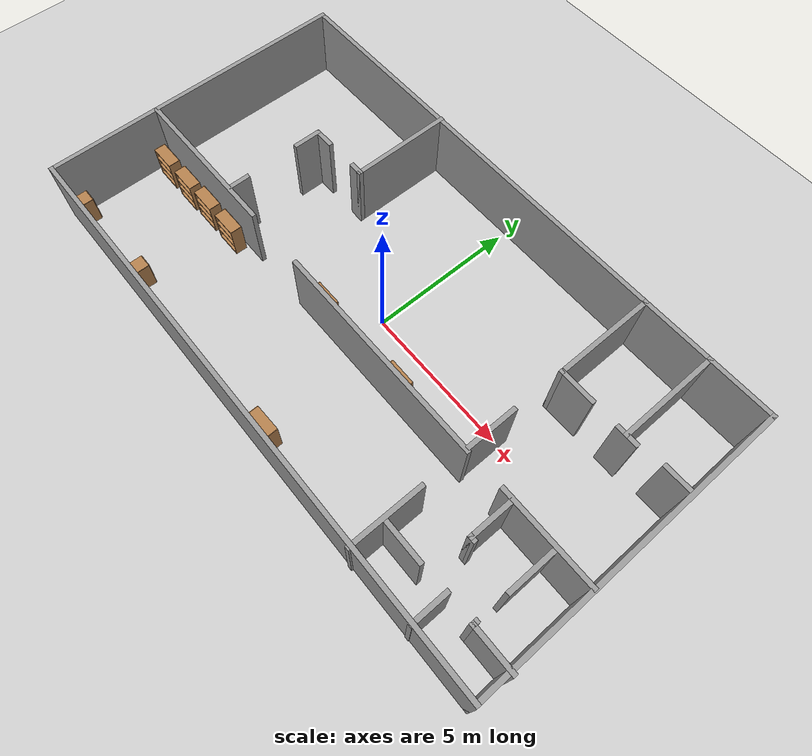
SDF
<sdf version="1.7">
 <world name="default">
  <light name="sun" type="directional">
   <pose>0 0 10 0 -0 0</pose>
   <diffuse>0.8 0.8 0.8 1</diffuse>
   <specular>0.2 0.2 0.2 1</specular>
   <attenuation>
    <range>1000</range>
    <constant>0.9</constant>
    <linear>0.01</linear>
    <quadratic>0.001</quadratic>
   </attenuation>
   <direction>-0.5 0.1 -0.9</direction>
   <spot><inner_angle>0</inner_angle><outer_angle>0</outer_angle><falloff>0</falloff></spot>
  </light>
  <model name="ground_plane">
   <static>1</static>
   <link name="link">
    <collision name="collision">
     <geometry><plane><normal>0 0 1</normal><size>100 100</size></plane></geometry>
     <surface>
      <contact><collide_bitmask>65535</collide_bitmask></contact>
      <friction><ode><mu>100</mu><mu2>50</mu2></ode></friction>
     </surface>
    </collision>
    <visual name="visual">
     <cast_shadows>0</cast_shadows>
     <geometry><plane><normal>0 0 1</normal><size>100 100</size></plane></geometry>
     <material>
      <script><uri>file://media/materials/scripts/gazebo.material</uri><name>Gazebo/Grey</name></script>
     </material>
    </visual>
   </link>
  </model>
  <gravity>0 0 -9.8</gravity>
  <magnetic_field>6e-06 2.3e-05 -4.2e-05</magnetic_field>
  <atmosphere type="adiabatic"/>
  <physics type="ode">
   <max_step_size>0.001</max_step_size>
   <real_time_factor>1</real_time_factor>
   <real_time_update_rate>1000</real_time_update_rate>
  </physics>
  <scene><ambient>0.4 0.4 0.4 1</ambient><background>0.7 0.7 0.7 1</background><shadows>1</shadows></scene>
  <audio><device>default</device></audio>
  <spherical_coordinates>
   <surface_model>EARTH_WGS84</surface_model>
   <latitude_deg>0</latitude_deg>
   <longitude_deg>0</longitude_deg>
   <elevation>0</elevation>
   <heading_deg>0</heading_deg>
  </spherical_coordinates>
  <model name="office_wall">
   <link name="Wall_0">
    <collision name="Wall_0_Collision">
     <geometry><box><size>10.75 0.15 2.5</size></box></geometry>
     <pose>0 0 1.25 0 -0 0</pose>
    </collision>
    <visual name="Wall_0_Visual">
     <pose>0 0 1.25 0 -0 0</pose>
     <geometry><box><size>10.75 0.15 2.5</size></box></geometry>
     <material>
      <script><uri>file://media/materials/scripts/gazebo.material</uri><name>Gazebo/Grey</name></script>
      <ambient>1 1 1 1</ambient>
     </material>
     <meta><layer>0</layer></meta>
    </visual>
    <pose>-9.71196 0.01818 0 0 -0 -1.5708</pose>
   </link>
   <link name="Wall_1">
    <collision name="Wall_1_Collision">
     <geometry><box><size>19.5 0.15 2.5</size></box></geometry>
     <pose>0 0 1.25 0 -0 0</pose>
    </collision>
    <visual name="Wall_1_Visual">
     <pose>0 0 1.25 0 -0 0</pose>
     <geometry><box><size>19.5 0.15 2.5</size></box></geometry>
     <material>
      <script><uri>file://media/materials/scripts/gazebo.material</uri><name>Gazebo/Grey</name></script>
      <ambient>1 1 1 1</ambient>
     </material>
     <meta><layer>0</layer></meta>
    </visual>
    <pose>-0.036964 -5.28182 0 0 -0 0</pose>
   </link>
   <link name="Wall_10">
    <collision name="Wall_10_Collision">
     <geometry><box><size>5.5 0.15 2.5</size></box></geometry>
     <pose>0 0 1.25 0 -0 0</pose>
    </collision>
    <visual name="Wall_10_Visual">
     <pose>0 0 1.25 0 -0 0</pose>
     <geometry><box><size>5.5 0.15 2.5</size></box></geometry>
     <material>
      <script><uri>file://media/materials/scripts/gazebo.material</uri><name>Gazebo/Grey</name></script>
      <ambient>1 1 1 1</ambient>
     </material>
     <meta><layer>0</layer></meta>
    </visual>
    <pose>-7.00044 -1.47931 0 0 -0 0</pose>
   </link>
   <link name="Wall_12">
    <collision name="Wall_12_Collision">
     <geometry><box><size>1.75 0.15 2.5</size></box></geometry>
     <pose>0 0 1.25 0 -0 0</pose>
    </collision>
    <visual name="Wall_12_Visual">
     <pose>0 0 1.25 0 -0 0</pose>
     <geometry><box><size>1.75 0.15 2.5</size></box></geometry>
     <material>
      <script><uri>file://media/materials/scripts/gazebo.material</uri><name>Gazebo/Grey</name></script>
      <ambient>1 1 1 1</ambient>
     </material>
     <meta><layer>0</layer></meta>
    </visual>
    <pose>5.15309 -0.591141 0 0 -0 -1.5708</pose>
   </link>
   <link name="Wall_14">
    <collision name="Wall_14_Collision">
     <geometry><box><size>7.5 0.15 2.5</size></box></geometry>
     <pose>0 0 1.25 0 -0 0</pose>
    </collision>
    <visual name="Wall_14_Visual">
     <pose>0 0 1.25 0 -0 0</pose>
     <geometry><box><size>7.5 0.15 2.5</size></box></geometry>
     <material>
      <script><uri>file://media/materials/scripts/gazebo.material</uri><name>Gazebo/Grey</name></script>
      <ambient>1 1 1 1</ambient>
     </material>
     <meta><layer>0</layer></meta>
    </visual>
    <pose>1.52789 -1.49452 0 0 -0 0</pose>
   </link>
   <link name="Wall_16">
    <collision name="Wall_16_Collision">
     <geometry><box><size>2.5 0.15 2.5</size></box></geometry>
     <pose>0 0 1.25 0 -0 0</pose>
    </collision>
    <visual name="Wall_16_Visual">
     <pose>0 0 1.25 0 -0 0</pose>
     <geometry><box><size>2.5 0.15 2.5</size></box></geometry>
     <material>
      <script><uri>file://media/materials/scripts/gazebo.material</uri><name>Gazebo/Grey</name></script>
      <ambient>1 1 1 1</ambient>
     </material>
     <meta><layer>0</layer></meta>
    </visual>
    <pose>5.14829 -4.16453 0 0 -0 -1.5708</pose>
   </link>
   <link name="Wall_18">
    <collision name="Wall_18_Collision">
     <geometry><box><size>1.5 0.15 2.5</size></box></geometry>
     <pose>0 0 1.25 0 -0 0</pose>
    </collision>
    <visual name="Wall_18_Visual">
     <pose>0 0 1.25 0 -0 0</pose>
     <geometry><box><size>1.5 0.15 2.5</size></box></geometry>
     <material>
      <script><uri>file://media/materials/scripts/gazebo.material</uri><name>Gazebo/Grey</name></script>
      <ambient>1 1 1 1</ambient>
     </material>
     <meta><layer>0</layer></meta>
    </visual>
    <pose>5.84974 -4.2459 0 0 -0 0</pose>
   </link>
   <link name="Wall_2">
    <collision name="Wall_2_Collision">
     <geometry><box><size>10.75 0.15 2.5</size></box></geometry>
     <pose>0 0 1.25 0 -0 0</pose>
    </collision>
    <visual name="Wall_2_Visual">
     <pose>0 0 1.25 0 -0 0</pose>
     <geometry><box><size>10.75 0.15 2.5</size></box></geometry>
     <material>
      <script><uri>file://media/materials/scripts/gazebo.material</uri><name>Gazebo/Grey</name></script>
      <ambient>1 1 1 1</ambient>
     </material>
     <meta><layer>0</layer></meta>
    </visual>
    <pose>9.63804 0.01818 0 0 -0 1.5708</pose>
   </link>
   <link name="Wall_20">
    <collision name="Wall_20_Collision">
     <geometry><box><size>1.25 0.15 2.5</size></box></geometry>
     <pose>0 0 1.25 0 -0 0</pose>
    </collision>
    <visual name="Wall_20_Visual">
     <pose>0 0 1.25 0 -0 0</pose>
     <geometry><box><size>1.25 0.15 2.5</size></box></geometry>
     <material>
      <script><uri>file://media/materials/scripts/gazebo.material</uri><name>Gazebo/Grey</name></script>
      <ambient>1 1 1 1</ambient>
     </material>
     <meta><layer>0</layer></meta>
    </visual>
    <pose>7.44944 -4.75623 0 0 -0 -1.5708</pose>
   </link>
   <link name="Wall_22">
    <collision name="Wall_22_Collision">
     <geometry><box><size>1.5 0.15 2.5</size></box></geometry>
     <pose>0 0 1.25 0 -0 0</pose>
    </collision>
    <visual name="Wall_22_Visual">
     <pose>0 0 1.25 0 -0 0</pose>
     <geometry><box><size>1.5 0.15 2.5</size></box></geometry>
     <material>
      <script><uri>file://media/materials/scripts/gazebo.material</uri><name>Gazebo/Grey</name></script>
      <ambient>1 1 1 1</ambient>
     </material>
     <meta><layer>0</layer></meta>
    </visual>
    <pose>9.03696 -4.21945 0 0 -0 0</pose>
   </link>
   <link name="Wall_24">
    <collision name="Wall_24_Collision">
     <geometry><box><size>0.25 0.15 2.5</size></box></geometry>
     <pose>0 0 1.25 0 -0 0</pose>
    </collision>
    <visual name="Wall_24_Visual">
     <pose>0 0 1.25 0 -0 0</pose>
     <geometry><box><size>0.25 0.15 2.5</size></box></geometry>
     <material>
      <script><uri>file://media/materials/scripts/gazebo.material</uri><name>Gazebo/Grey</name></script>
      <ambient>1 1 1 1</ambient>
     </material>
     <meta><layer>0</layer></meta>
    </visual>
    <pose>8.36196 -4.16945 0 0 -0 1.5708</pose>
   </link>
   <link name="Wall_26">
    <collision name="Wall_26_Collision">
     <geometry><box><size>3.25 0.15 2.5</size></box></geometry>
     <pose>0 0 1.25 0 -0 0</pose>
    </collision>
    <visual name="Wall_26_Visual">
     <pose>0 0 1.25 0 -0 0</pose>
     <geometry><box><size>3.25 0.15 2.5</size></box></geometry>
     <material>
      <script><uri>file://media/materials/scripts/gazebo.material</uri><name>Gazebo/Grey</name></script>
      <ambient>1 1 1 1</ambient>
     </material>
     <meta><layer>0</layer></meta>
    </visual>
    <pose>8.05511 -1.46865 0 0 -0 3.14159</pose>
   </link>
   <link name="Wall_3">
    <collision name="Wall_3_Collision">
     <geometry><box><size>19.5 0.15 2.5</size></box></geometry>
     <pose>0 0 1.25 0 -0 0</pose>
    </collision>
    <visual name="Wall_3_Visual">
     <pose>0 0 1.25 0 -0 0</pose>
     <geometry><box><size>19.5 0.15 2.5</size></box></geometry>
     <material>
      <script><uri>file://media/materials/scripts/gazebo.material</uri><name>Gazebo/Grey</name></script>
      <ambient>1 1 1 1</ambient>
     </material>
     <meta><layer>0</layer></meta>
    </visual>
    <pose>-0.036964 5.31818 0 0 -0 3.14159</pose>
   </link>
   <link name="Wall_31">
    <collision name="Wall_31_Collision">
     <geometry><box><size>1.75 0.15 2.5</size></box></geometry>
     <pose>0 0 1.25 0 -0 0</pose>
    </collision>
    <visual name="Wall_31_Visual">
     <pose>0 0 1.25 0 -0 0</pose>
     <geometry><box><size>1.75 0.15 2.5</size></box></geometry>
     <material>
      <script><uri>file://media/materials/scripts/gazebo.material</uri><name>Gazebo/Grey</name></script>
      <ambient>1 1 1 1</ambient>
     </material>
     <meta><layer>0</layer></meta>
    </visual>
    <pose>8.38841 -2.26865 0 0 -0 -1.5708</pose>
   </link>
   <link name="Wall_36">
    <collision name="Wall_36_Collision">
     <geometry><box><size>1.5 0.15 2.5</size></box></geometry>
     <pose>0 0 1.25 0 -0 0</pose>
    </collision>
    <visual name="Wall_36_Visual">
     <pose>0 0 1.25 0 -0 0</pose>
     <geometry><box><size>1.5 0.15 2.5</size></box></geometry>
     <material>
      <script><uri>file://media/materials/scripts/gazebo.material</uri><name>Gazebo/Grey</name></script>
      <ambient>1 1 1 1</ambient>
     </material>
     <meta><layer>0</layer></meta>
    </visual>
    <pose>6.86198 -2.21989 0 0 -0 -1.5708</pose>
   </link>
   <link name="Wall_37">
    <collision name="Wall_37_Collision">
     <geometry><box><size>0.25 0.15 2.5</size></box></geometry>
     <pose>0 0 1.25 0 -0 0</pose>
    </collision>
    <visual name="Wall_37_Visual">
     <pose>0 0 1.25 0 -0 0</pose>
     <geometry><box><size>0.25 0.15 2.5</size></box></geometry>
     <material>
      <script><uri>file://media/materials/scripts/gazebo.material</uri><name>Gazebo/Grey</name></script>
      <ambient>1 1 1 1</ambient>
     </material>
     <meta><layer>0</layer></meta>
    </visual>
    <pose>6.91198 -2.89489 0 0 -0 0</pose>
   </link>
   <link name="Wall_39">
    <collision name="Wall_39_Collision">
     <geometry><box><size>3.5 0.15 2.5</size></box></geometry>
     <pose>0 0 1.25 0 -0 0</pose>
    </collision>
    <visual name="Wall_39_Visual">
     <pose>0 0 1.25 0 -0 0</pose>
     <geometry><box><size>3.5 0.15 2.5</size></box></geometry>
     <material>
      <script><uri>file://media/materials/scripts/gazebo.material</uri><name>Gazebo/Grey</name></script>
      <ambient>1 1 1 1</ambient>
     </material>
     <meta><layer>0</layer></meta>
    </visual>
    <pose>-3.5054 3.66453 0 0 -0 -1.5708</pose>
   </link>
   <link name="Wall_40">
    <collision name="Wall_40_Collision">
     <geometry><box><size>0.5 0.15 2.5</size></box></geometry>
     <pose>0 0 1.25 0 -0 0</pose>
    </collision>
    <visual name="Wall_40_Visual">
     <pose>0 0 1.25 0 -0 0</pose>
     <geometry><box><size>0.5 0.15 2.5</size></box></geometry>
     <material>
      <script><uri>file://media/materials/scripts/gazebo.material</uri><name>Gazebo/Grey</name></script>
      <ambient>1 1 1 1</ambient>
     </material>
     <meta><layer>0</layer></meta>
    </visual>
    <pose>-3.6804 1.98953 0 0 -0 3.14159</pose>
   </link>
   <link name="Wall_42">
    <collision name="Wall_42_Collision">
     <geometry><box><size>3.5 0.15 2.5</size></box></geometry>
     <pose>0 0 1.25 0 -0 0</pose>
    </collision>
    <visual name="Wall_42_Visual">
     <pose>0 0 1.25 0 -0 0</pose>
     <geometry><box><size>3.5 0.15 2.5</size></box></geometry>
     <material>
      <script><uri>file://media/materials/scripts/gazebo.material</uri><name>Gazebo/Grey</name></script>
      <ambient>1 1 1 1</ambient>
     </material>
     <meta><layer>0</layer></meta>
    </visual>
    <pose>5.20378 3.64441 0 0 -0 -1.5708</pose>
   </link>
   <link name="Wall_43">
    <collision name="Wall_43_Collision">
     <geometry><box><size>1.25 0.15 2.5</size></box></geometry>
     <pose>0 0 1.25 0 -0 0</pose>
    </collision>
    <visual name="Wall_43_Visual">
     <pose>0 0 1.25 0 -0 0</pose>
     <geometry><box><size>1.25 0.15 2.5</size></box></geometry>
     <material>
      <script><uri>file://media/materials/scripts/gazebo.material</uri><name>Gazebo/Grey</name></script>
      <ambient>1 1 1 1</ambient>
     </material>
     <meta><layer>0</layer></meta>
    </visual>
    <pose>5.75378 1.96941 0 0 -0 0</pose>
   </link>
   <link name="Wall_45">
    <collision name="Wall_45_Collision">
     <geometry><box><size>3.5 0.15 2.5</size></box></geometry>
     <pose>0 0 1.25 0 -0 0</pose>
    </collision>
    <visual name="Wall_45_Visual">
     <pose>0 0 1.25 0 -0 0</pose>
     <geometry><box><size>3.5 0.15 2.5</size></box></geometry>
     <material>
      <script><uri>file://media/materials/scripts/gazebo.material</uri><name>Gazebo/Grey</name></script>
      <ambient>1 1 1 1</ambient>
     </material>
     <meta><layer>0</layer></meta>
    </visual>
    <pose>7.51684 3.64441 0 0 -0 -1.5708</pose>
   </link>
   <link name="Wall_48">
    <collision name="Wall_48_Collision">
     <geometry><box><size>0.75 0.15 2.5</size></box></geometry>
     <pose>0 0 1.25 0 -0 0</pose>
    </collision>
    <visual name="Wall_48_Visual">
     <pose>0 0 1.25 0 -0 0</pose>
     <geometry><box><size>0.75 0.15 2.5</size></box></geometry>
     <material>
      <script><uri>file://media/materials/scripts/gazebo.material</uri><name>Gazebo/Grey</name></script>
      <ambient>1 1 1 1</ambient>
     </material>
     <meta><layer>0</layer></meta>
    </visual>
    <pose>7.5468 1.96479 0 0 -0 0</pose>
   </link>
   <link name="Wall_5">
    <collision name="Wall_5_Collision">
     <geometry><box><size>0.75 0.15 2.5</size></box></geometry>
     <pose>0 0 1.25 0 -0 0</pose>
    </collision>
    <visual name="Wall_5_Visual">
     <pose>0 0 1.25 0 -0 0</pose>
     <geometry><box><size>0.75 0.15 2.5</size></box></geometry>
     <material>
      <script><uri>file://media/materials/scripts/gazebo.material</uri><name>Gazebo/Grey</name></script>
      <ambient>1 1 1 1</ambient>
     </material>
     <meta><layer>0</layer></meta>
    </visual>
    <pose>-5.30636 1.97307 0 0 -0 3.14159</pose>
   </link>
   <link name="Wall_50">
    <collision name="Wall_50_Collision">
     <geometry><box><size>1 0.15 2.5</size></box></geometry>
     <pose>0 0 1.25 0 -0 0</pose>
    </collision>
    <visual name="Wall_50_Visual">
     <pose>0 0 1.25 0 -0 0</pose>
     <geometry><box><size>1 0.15 2.5</size></box></geometry>
     <material>
      <script><uri>file://media/materials/scripts/gazebo.material</uri><name>Gazebo/Grey</name></script>
      <ambient>1 1 1 1</ambient>
     </material>
     <meta><layer>0</layer></meta>
    </visual>
    <pose>9.15664 2.1075 0 0 -0 0</pose>
   </link>
   <link name="Wall_6">
    <collision name="Wall_6_Collision">
     <geometry><box><size>1 0.15 2.5</size></box></geometry>
     <pose>0 0 1.25 0 -0 0</pose>
    </collision>
    <visual name="Wall_6_Visual">
     <pose>0 0 1.25 0 -0 0</pose>
     <geometry><box><size>1 0.15 2.5</size></box></geometry>
     <material>
      <script><uri>file://media/materials/scripts/gazebo.material</uri><name>Gazebo/Grey</name></script>
      <ambient>1 1 1 1</ambient>
     </material>
     <meta><layer>0</layer></meta>
    </visual>
    <pose>-5.60636 1.54807 0 0 -0 -1.5708</pose>
   </link>
   <link name="Wall_8">
    <collision name="Wall_8_Collision">
     <geometry><box><size>0.75 0.15 2.5</size></box></geometry>
     <pose>0 0 1.25 0 -0 0</pose>
    </collision>
    <visual name="Wall_8_Visual">
     <pose>0 0 1.25 0 -0 0</pose>
     <geometry><box><size>0.75 0.15 2.5</size></box></geometry>
     <material>
      <script><uri>file://media/materials/scripts/gazebo.material</uri><name>Gazebo/Grey</name></script>
      <ambient>1 1 1 1</ambient>
     </material>
     <meta><layer>0</layer></meta>
    </visual>
    <pose>-5.5995 -1.09492 0 0 -0 -1.5708</pose>
   </link>
   <static>1</static>
  </model>
  <model name="bookshelf">
   <static>1</static>
   <link name="link">
    <inertial><mass>1</mass></inertial>
    <collision name="back">
     <pose>0 0.005 0.6 0 -0 0</pose>
     <geometry><box><size>0.9 0.01 1.2</size></box></geometry>
    </collision>
    <visual name="visual1">
     <pose>0 0.005 0.6 0 -0 0</pose>
     <geometry><box><size>0.9 0.01 1.2</size></box></geometry>
     <material>
      <script><uri>file://media/materials/scripts/gazebo.material</uri><name>Gazebo/Wood</name></script>
     </material>
    </visual>
    <collision name="left_side">
     <pose>0.45 -0.195 0.6 0 -0 0</pose>
     <geometry><box><size>0.02 0.4 1.2</size></box></geometry>
    </collision>
    <visual name="visual2">
     <pose>0.45 -0.195 0.6 0 -0 0</pose>
     <geometry><box><size>0.02 0.4 1.2</size></box></geometry>
     <material>
      <script><uri>file://media/materials/scripts/gazebo.material</uri><name>Gazebo/Wood</name></script>
     </material>
    </visual>
    <collision name="right_side">
     <pose>-0.45 -0.195 0.6 0 -0 0</pose>
     <geometry><box><size>0.02 0.4 1.2</size></box></geometry>
    </collision>
    <visual name="visual3">
     <pose>-0.45 -0.195 0.6 0 -0 0</pose>
     <geometry><box><size>0.02 0.4 1.2</size></box></geometry>
     <material>
      <script><uri>file://media/materials/scripts/gazebo.material</uri><name>Gazebo/Wood</name></script>
     </material>
    </visual>
    <collision name="bottom">
     <pose>0 -0.195 0.03 0 -0 0</pose>
     <geometry><box><size>0.88 0.4 0.06</size></box></geometry>
    </collision>
    <visual name="visual4">
     <pose>0 -0.195 0.03 0 -0 0</pose>
     <geometry><box><size>0.88 0.4 0.06</size></box></geometry>
     <material>
      <script><uri>file://media/materials/scripts/gazebo.material</uri><name>Gazebo/Wood</name></script>
     </material>
    </visual>
    <collision name="top">
     <pose>0 -0.195 1.19 0 -0 0</pose>
     <geometry><box><size>0.88 0.4 0.02</size></box></geometry>
    </collision>
    <visual name="visual5">
     <pose>0 -0.195 1.19 0 -0 0</pose>
     <geometry><box><size>0.88 0.4 0.02</size></box></geometry>
     <material>
      <script><uri>file://media/materials/scripts/gazebo.material</uri><name>Gazebo/Wood</name></script>
     </material>
    </visual>
    <collision name="low_shelf">
     <pose>0 -0.195 0.43 0 -0 0</pose>
     <geometry><box><size>0.88 0.4 0.02</size></box></geometry>
    </collision>
    <visual name="visual6">
     <pose>0 -0.195 0.43 0 -0 0</pose>
     <geometry><box><size>0.88 0.4 0.02</size></box></geometry>
     <material>
      <script><uri>file://media/materials/scripts/gazebo.material</uri><name>Gazebo/Wood</name></script>
     </material>
    </visual>
    <collision name="high_shelf">
     <pose>0 -0.195 0.8 0 -0 0</pose>
     <geometry><box><size>0.88 0.4 0.02</size></box></geometry>
    </collision>
    <visual name="visual7">
     <pose>0 -0.195 0.8 0 -0 0</pose>
     <geometry><box><size>0.88 0.4 0.02</size></box></geometry>
     <material>
      <script><uri>file://media/materials/scripts/gazebo.material</uri><name>Gazebo/Wood</name></script>
     </material>
    </visual>
   </link>
   <pose>-8.97007 -1.71178 0 0 -0 0</pose>
  </model>
  <model name="bookshelf_0">
   <static>1</static>
   <link name="link">
    <inertial><mass>1</mass></inertial>
    <collision name="back">
     <pose>0 0.005 0.6 0 -0 0</pose>
     <geometry><box><size>0.9 0.01 1.2</size></box></geometry>
    </collision>
    <visual name="visual1">
     <pose>0 0.005 0.6 0 -0 0</pose>
     <geometry><box><size>0.9 0.01 1.2</size></box></geometry>
     <material>
      <script><uri>file://media/materials/scripts/gazebo.material</uri><name>Gazebo/Wood</name></script>
     </material>
    </visual>
    <collision name="left_side">
     <pose>0.45 -0.195 0.6 0 -0 0</pose>
     <geometry><box><size>0.02 0.4 1.2</size></box></geometry>
    </collision>
    <visual name="visual2">
     <pose>0.45 -0.195 0.6 0 -0 0</pose>
     <geometry><box><size>0.02 0.4 1.2</size></box></geometry>
     <material>
      <script><uri>file://media/materials/scripts/gazebo.material</uri><name>Gazebo/Wood</name></script>
     </material>
    </visual>
    <collision name="right_side">
     <pose>-0.45 -0.195 0.6 0 -0 0</pose>
     <geometry><box><size>0.02 0.4 1.2</size></box></geometry>
    </collision>
    <visual name="visual3">
     <pose>-0.45 -0.195 0.6 0 -0 0</pose>
     <geometry><box><size>0.02 0.4 1.2</size></box></geometry>
     <material>
      <script><uri>file://media/materials/scripts/gazebo.material</uri><name>Gazebo/Wood</name></script>
     </material>
    </visual>
    <collision name="bottom">
     <pose>0 -0.195 0.03 0 -0 0</pose>
     <geometry><box><size>0.88 0.4 0.06</size></box></geometry>
    </collision>
    <visual name="visual4">
     <pose>0 -0.195 0.03 0 -0 0</pose>
     <geometry><box><size>0.88 0.4 0.06</size></box></geometry>
     <material>
      <script><uri>file://media/materials/scripts/gazebo.material</uri><name>Gazebo/Wood</name></script>
     </material>
    </visual>
    <collision name="top">
     <pose>0 -0.195 1.19 0 -0 0</pose>
     <geometry><box><size>0.88 0.4 0.02</size></box></geometry>
    </collision>
    <visual name="visual5">
     <pose>0 -0.195 1.19 0 -0 0</pose>
     <geometry><box><size>0.88 0.4 0.02</size></box></geometry>
     <material>
      <script><uri>file://media/materials/scripts/gazebo.material</uri><name>Gazebo/Wood</name></script>
     </material>
    </visual>
    <collision name="low_shelf">
     <pose>0 -0.195 0.43 0 -0 0</pose>
     <geometry><box><size>0.88 0.4 0.02</size></box></geometry>
    </collision>
    <visual name="visual6">
     <pose>0 -0.195 0.43 0 -0 0</pose>
     <geometry><box><size>0.88 0.4 0.02</size></box></geometry>
     <material>
      <script><uri>file://media/materials/scripts/gazebo.material</uri><name>Gazebo/Wood</name></script>
     </material>
    </visual>
    <collision name="high_shelf">
     <pose>0 -0.195 0.8 0 -0 0</pose>
     <geometry><box><size>0.88 0.4 0.02</size></box></geometry>
    </collision>
    <visual name="visual7">
     <pose>0 -0.195 0.8 0 -0 0</pose>
     <geometry><box><size>0.88 0.4 0.02</size></box></geometry>
     <material>
      <script><uri>file://media/materials/scripts/gazebo.material</uri><name>Gazebo/Wood</name></script>
     </material>
    </visual>
   </link>
   <pose>-7.76285 -1.7003 0 0 -0 0</pose>
  </model>
  <model name="bookshelf_1">
   <static>1</static>
   <link name="link">
    <inertial><mass>1</mass></inertial>
    <collision name="back">
     <pose>0 0.005 0.6 0 -0 0</pose>
     <geometry><box><size>0.9 0.01 1.2</size></box></geometry>
    </collision>
    <visual name="visual1">
     <pose>0 0.005 0.6 0 -0 0</pose>
     <geometry><box><size>0.9 0.01 1.2</size></box></geometry>
     <material>
      <script><uri>file://media/materials/scripts/gazebo.material</uri><name>Gazebo/Wood</name></script>
     </material>
    </visual>
    <collision name="left_side">
     <pose>0.45 -0.195 0.6 0 -0 0</pose>
     <geometry><box><size>0.02 0.4 1.2</size></box></geometry>
    </collision>
    <visual name="visual2">
     <pose>0.45 -0.195 0.6 0 -0 0</pose>
     <geometry><box><size>0.02 0.4 1.2</size></box></geometry>
     <material>
      <script><uri>file://media/materials/scripts/gazebo.material</uri><name>Gazebo/Wood</name></script>
     </material>
    </visual>
    <collision name="right_side">
     <pose>-0.45 -0.195 0.6 0 -0 0</pose>
     <geometry><box><size>0.02 0.4 1.2</size></box></geometry>
    </collision>
    <visual name="visual3">
     <pose>-0.45 -0.195 0.6 0 -0 0</pose>
     <geometry><box><size>0.02 0.4 1.2</size></box></geometry>
     <material>
      <script><uri>file://media/materials/scripts/gazebo.material</uri><name>Gazebo/Wood</name></script>
     </material>
    </visual>
    <collision name="bottom">
     <pose>0 -0.195 0.03 0 -0 0</pose>
     <geometry><box><size>0.88 0.4 0.06</size></box></geometry>
    </collision>
    <visual name="visual4">
     <pose>0 -0.195 0.03 0 -0 0</pose>
     <geometry><box><size>0.88 0.4 0.06</size></box></geometry>
     <material>
      <script><uri>file://media/materials/scripts/gazebo.material</uri><name>Gazebo/Wood</name></script>
     </material>
    </visual>
    <collision name="top">
     <pose>0 -0.195 1.19 0 -0 0</pose>
     <geometry><box><size>0.88 0.4 0.02</size></box></geometry>
    </collision>
    <visual name="visual5">
     <pose>0 -0.195 1.19 0 -0 0</pose>
     <geometry><box><size>0.88 0.4 0.02</size></box></geometry>
     <material>
      <script><uri>file://media/materials/scripts/gazebo.material</uri><name>Gazebo/Wood</name></script>
     </material>
    </visual>
    <collision name="low_shelf">
     <pose>0 -0.195 0.43 0 -0 0</pose>
     <geometry><box><size>0.88 0.4 0.02</size></box></geometry>
    </collision>
    <visual name="visual6">
     <pose>0 -0.195 0.43 0 -0 0</pose>
     <geometry><box><size>0.88 0.4 0.02</size></box></geometry>
     <material>
      <script><uri>file://media/materials/scripts/gazebo.material</uri><name>Gazebo/Wood</name></script>
     </material>
    </visual>
    <collision name="high_shelf">
     <pose>0 -0.195 0.8 0 -0 0</pose>
     <geometry><box><size>0.88 0.4 0.02</size></box></geometry>
    </collision>
    <visual name="visual7">
     <pose>0 -0.195 0.8 0 -0 0</pose>
     <geometry><box><size>0.88 0.4 0.02</size></box></geometry>
     <material>
      <script><uri>file://media/materials/scripts/gazebo.material</uri><name>Gazebo/Wood</name></script>
     </material>
    </visual>
   </link>
   <pose>-6.65986 -1.66157 0 0 -0 0</pose>
  </model>
  <model name="bookshelf_2">
   <static>1</static>
   <link name="link">
    <inertial><mass>1</mass></inertial>
    <collision name="back">
     <pose>0 0.005 0.6 0 -0 0</pose>
     <geometry><box><size>0.9 0.01 1.2</size></box></geometry>
    </collision>
    <visual name="visual1">
     <pose>0 0.005 0.6 0 -0 0</pose>
     <geometry><box><size>0.9 0.01 1.2</size></box></geometry>
     <material>
      <script><uri>file://media/materials/scripts/gazebo.material</uri><name>Gazebo/Wood</name></script>
     </material>
    </visual>
    <collision name="left_side">
     <pose>0.45 -0.195 0.6 0 -0 0</pose>
     <geometry><box><size>0.02 0.4 1.2</size></box></geometry>
    </collision>
    <visual name="visual2">
     <pose>0.45 -0.195 0.6 0 -0 0</pose>
     <geometry><box><size>0.02 0.4 1.2</size></box></geometry>
     <material>
      <script><uri>file://media/materials/scripts/gazebo.material</uri><name>Gazebo/Wood</name></script>
     </material>
    </visual>
    <collision name="right_side">
     <pose>-0.45 -0.195 0.6 0 -0 0</pose>
     <geometry><box><size>0.02 0.4 1.2</size></box></geometry>
    </collision>
    <visual name="visual3">
     <pose>-0.45 -0.195 0.6 0 -0 0</pose>
     <geometry><box><size>0.02 0.4 1.2</size></box></geometry>
     <material>
      <script><uri>file://media/materials/scripts/gazebo.material</uri><name>Gazebo/Wood</name></script>
     </material>
    </visual>
    <collision name="bottom">
     <pose>0 -0.195 0.03 0 -0 0</pose>
     <geometry><box><size>0.88 0.4 0.06</size></box></geometry>
    </collision>
    <visual name="visual4">
     <pose>0 -0.195 0.03 0 -0 0</pose>
     <geometry><box><size>0.88 0.4 0.06</size></box></geometry>
     <material>
      <script><uri>file://media/materials/scripts/gazebo.material</uri><name>Gazebo/Wood</name></script>
     </material>
    </visual>
    <collision name="top">
     <pose>0 -0.195 1.19 0 -0 0</pose>
     <geometry><box><size>0.88 0.4 0.02</size></box></geometry>
    </collision>
    <visual name="visual5">
     <pose>0 -0.195 1.19 0 -0 0</pose>
     <geometry><box><size>0.88 0.4 0.02</size></box></geometry>
     <material>
      <script><uri>file://media/materials/scripts/gazebo.material</uri><name>Gazebo/Wood</name></script>
     </material>
    </visual>
    <collision name="low_shelf">
     <pose>0 -0.195 0.43 0 -0 0</pose>
     <geometry><box><size>0.88 0.4 0.02</size></box></geometry>
    </collision>
    <visual name="visual6">
     <pose>0 -0.195 0.43 0 -0 0</pose>
     <geometry><box><size>0.88 0.4 0.02</size></box></geometry>
     <material>
      <script><uri>file://media/materials/scripts/gazebo.material</uri><name>Gazebo/Wood</name></script>
     </material>
    </visual>
    <collision name="high_shelf">
     <pose>0 -0.195 0.8 0 -0 0</pose>
     <geometry><box><size>0.88 0.4 0.02</size></box></geometry>
    </collision>
    <visual name="visual7">
     <pose>0 -0.195 0.8 0 -0 0</pose>
     <geometry><box><size>0.88 0.4 0.02</size></box></geometry>
     <material>
      <script><uri>file://media/materials/scripts/gazebo.material</uri><name>Gazebo/Wood</name></script>
     </material>
    </visual>
   </link>
   <pose>-5.47834 -1.65242 0 0 -0 0</pose>
  </model>
  <model name="cabinet">
   <static>1</static>
   <link name="cabinet_bottom_plate">
    <inertial>
     <pose>0 0 -1 0 -0 0</pose>
     <inertia><ixx>2.05</ixx><ixy>0</ixy><ixz>0</ixz><iyy>2.05</iyy><iyz>0</iyz><izz>2.05</izz></inertia>
     <mass>25</mass>
    </inertial>
    <collision name="cabinet_bottom_plate_geom">
     <pose>0 0 0.01 0 -0 0</pose>
     <geometry><box><size>0.45 0.45 0.02</size></box></geometry>
    </collision>
    <visual name="cabinet_bottom_plate_geom_visual">
     <pose>0 0 0.01 0 -0 0</pose>
     <geometry><box><size>0.45 0.45 0.02</size></box></geometry>
     <material>
      <script><uri>file://media/materials/scripts/gazebo.material</uri><name>Gazebo/Wood</name></script>
     </material>
    </visual>
    <collision name="cabinet_bottom_plate_geom_cabinet_back_plate">
     <pose>0.235 0 0.51 0 -0 0</pose>
     <geometry><box><size>0.02 0.45 1.02</size></box></geometry>
    </collision>
    <visual name="cabinet_bottom_plate_geom_cabinet_back_plate_visual">
     <pose>0.235 0 0.51 0 -0 0</pose>
     <geometry><box><size>0.02 0.45 1.02</size></box></geometry>
     <material>
      <script><uri>file://media/materials/scripts/gazebo.material</uri><name>Gazebo/Wood</name></script>
     </material>
    </visual>
    <collision name="cabinet_bottom_plate_geom_cabinet_left_plate">
     <pose>0 0.235 0.51 0 -0 0</pose>
     <geometry><box><size>0.45 0.02 1.02</size></box></geometry>
    </collision>
    <visual name="cabinet_bottom_plate_geom_cabinet_left_plate_visual">
     <pose>0 0.235 0.51 0 -0 0</pose>
     <geometry><box><size>0.45 0.02 1.02</size></box></geometry>
     <material>
      <script><uri>file://media/materials/scripts/gazebo.material</uri><name>Gazebo/Wood</name></script>
     </material>
    </visual>
    <collision name="cabinet_bottom_plate_geom_cabinet_middle_plate">
     <pose>0 0 0.51 0 -0 0</pose>
     <geometry><box><size>0.45 0.45 0.02</size></box></geometry>
    </collision>
    <visual name="cabinet_bottom_plate_geom_cabinet_middle_plate_visual">
     <pose>0 0 0.51 0 -0 0</pose>
     <geometry><box><size>0.45 0.45 0.02</size></box></geometry>
     <material>
      <script><uri>file://media/materials/scripts/gazebo.material</uri><name>Gazebo/Wood</name></script>
     </material>
    </visual>
    <collision name="cabinet_bottom_plate_geom_cabinet_right_plate">
     <pose>0 -0.235 0.51 0 -0 0</pose>
     <geometry><box><size>0.45 0.02 1.02</size></box></geometry>
    </collision>
    <visual name="cabinet_bottom_plate_geom_cabinet_right_plate_visual">
     <pose>0 -0.235 0.51 0 -0 0</pose>
     <geometry><box><size>0.45 0.02 1.02</size></box></geometry>
     <material>
      <script><uri>file://media/materials/scripts/gazebo.material</uri><name>Gazebo/Wood</name></script>
     </material>
    </visual>
    <collision name="cabinet_bottom_plate_geom_cabinet_top_plate">
     <pose>0 0 1.01 0 -0 0</pose>
     <geometry><box><size>0.45 0.45 0.02</size></box></geometry>
    </collision>
    <visual name="cabinet_bottom_plate_geom_cabinet_top_plate_visual">
     <pose>0 0 1.01 0 -0 0</pose>
     <geometry><box><size>0.45 0.45 0.02</size></box></geometry>
     <material>
      <script><uri>file://media/materials/scripts/gazebo.material</uri><name>Gazebo/Wood</name></script>
     </material>
    </visual>
   </link>
   <pose>-6.02046 -4.85897 0 0 -0 0</pose>
  </model>
  <model name="cabinet_0">
   <static>1</static>
   <link name="cabinet_bottom_plate">
    <inertial>
     <pose>0 0 -1 0 -0 0</pose>
     <inertia><ixx>2.05</ixx><ixy>0</ixy><ixz>0</ixz><iyy>2.05</iyy><iyz>0</iyz><izz>2.05</izz></inertia>
     <mass>25</mass>
    </inertial>
    <collision name="cabinet_bottom_plate_geom">
     <pose>0 0 0.01 0 -0 0</pose>
     <geometry><box><size>0.45 0.45 0.02</size></box></geometry>
    </collision>
    <visual name="cabinet_bottom_plate_geom_visual">
     <pose>0 0 0.01 0 -0 0</pose>
     <geometry><box><size>0.45 0.45 0.02</size></box></geometry>
     <material>
      <script><uri>file://media/materials/scripts/gazebo.material</uri><name>Gazebo/Wood</name></script>
     </material>
    </visual>
    <collision name="cabinet_bottom_plate_geom_cabinet_back_plate">
     <pose>0.235 0 0.51 0 -0 0</pose>
     <geometry><box><size>0.02 0.45 1.02</size></box></geometry>
    </collision>
    <visual name="cabinet_bottom_plate_geom_cabinet_back_plate_visual">
     <pose>0.235 0 0.51 0 -0 0</pose>
     <geometry><box><size>0.02 0.45 1.02</size></box></geometry>
     <material>
      <script><uri>file://media/materials/scripts/gazebo.material</uri><name>Gazebo/Wood</name></script>
     </material>
    </visual>
    <collision name="cabinet_bottom_plate_geom_cabinet_left_plate">
     <pose>0 0.235 0.51 0 -0 0</pose>
     <geometry><box><size>0.45 0.02 1.02</size></box></geometry>
    </collision>
    <visual name="cabinet_bottom_plate_geom_cabinet_left_plate_visual">
     <pose>0 0.235 0.51 0 -0 0</pose>
     <geometry><box><size>0.45 0.02 1.02</size></box></geometry>
     <material>
      <script><uri>file://media/materials/scripts/gazebo.material</uri><name>Gazebo/Wood</name></script>
     </material>
    </visual>
    <collision name="cabinet_bottom_plate_geom_cabinet_middle_plate">
     <pose>0 0 0.51 0 -0 0</pose>
     <geometry><box><size>0.45 0.45 0.02</size></box></geometry>
    </collision>
    <visual name="cabinet_bottom_plate_geom_cabinet_middle_plate_visual">
     <pose>0 0 0.51 0 -0 0</pose>
     <geometry><box><size>0.45 0.45 0.02</size></box></geometry>
     <material>
      <script><uri>file://media/materials/scripts/gazebo.material</uri><name>Gazebo/Wood</name></script>
     </material>
    </visual>
    <collision name="cabinet_bottom_plate_geom_cabinet_right_plate">
     <pose>0 -0.235 0.51 0 -0 0</pose>
     <geometry><box><size>0.45 0.02 1.02</size></box></geometry>
    </collision>
    <visual name="cabinet_bottom_plate_geom_cabinet_right_plate_visual">
     <pose>0 -0.235 0.51 0 -0 0</pose>
     <geometry><box><size>0.45 0.02 1.02</size></box></geometry>
     <material>
      <script><uri>file://media/materials/scripts/gazebo.material</uri><name>Gazebo/Wood</name></script>
     </material>
    </visual>
    <collision name="cabinet_bottom_plate_geom_cabinet_top_plate">
     <pose>0 0 1.01 0 -0 0</pose>
     <geometry><box><size>0.45 0.45 0.02</size></box></geometry>
    </collision>
    <visual name="cabinet_bottom_plate_geom_cabinet_top_plate_visual">
     <pose>0 0 1.01 0 -0 0</pose>
     <geometry><box><size>0.45 0.45 0.02</size></box></geometry>
     <material>
      <script><uri>file://media/materials/scripts/gazebo.material</uri><name>Gazebo/Wood</name></script>
     </material>
    </visual>
   </link>
   <pose>-9.33689 -4.92515 0 0 -0 0</pose>
  </model>
  <model name="bookshelf_3">
   <static>1</static>
   <link name="link">
    <inertial><mass>1</mass></inertial>
    <collision name="back">
     <pose>0 0.005 0.6 0 -0 0</pose>
     <geometry><box><size>0.9 0.01 1.2</size></box></geometry>
    </collision>
    <visual name="visual1">
     <pose>0 0.005 0.6 0 -0 0</pose>
     <geometry><box><size>0.9 0.01 1.2</size></box></geometry>
     <material>
      <script><uri>file://media/materials/scripts/gazebo.material</uri><name>Gazebo/Wood</name></script>
     </material>
    </visual>
    <collision name="left_side">
     <pose>0.45 -0.195 0.6 0 -0 0</pose>
     <geometry><box><size>0.02 0.4 1.2</size></box></geometry>
    </collision>
    <visual name="visual2">
     <pose>0.45 -0.195 0.6 0 -0 0</pose>
     <geometry><box><size>0.02 0.4 1.2</size></box></geometry>
     <material>
      <script><uri>file://media/materials/scripts/gazebo.material</uri><name>Gazebo/Wood</name></script>
     </material>
    </visual>
    <collision name="right_side">
     <pose>-0.45 -0.195 0.6 0 -0 0</pose>
     <geometry><box><size>0.02 0.4 1.2</size></box></geometry>
    </collision>
    <visual name="visual3">
     <pose>-0.45 -0.195 0.6 0 -0 0</pose>
     <geometry><box><size>0.02 0.4 1.2</size></box></geometry>
     <material>
      <script><uri>file://media/materials/scripts/gazebo.material</uri><name>Gazebo/Wood</name></script>
     </material>
    </visual>
    <collision name="bottom">
     <pose>0 -0.195 0.03 0 -0 0</pose>
     <geometry><box><size>0.88 0.4 0.06</size></box></geometry>
    </collision>
    <visual name="visual4">
     <pose>0 -0.195 0.03 0 -0 0</pose>
     <geometry><box><size>0.88 0.4 0.06</size></box></geometry>
     <material>
      <script><uri>file://media/materials/scripts/gazebo.material</uri><name>Gazebo/Wood</name></script>
     </material>
    </visual>
    <collision name="top">
     <pose>0 -0.195 1.19 0 -0 0</pose>
     <geometry><box><size>0.88 0.4 0.02</size></box></geometry>
    </collision>
    <visual name="visual5">
     <pose>0 -0.195 1.19 0 -0 0</pose>
     <geometry><box><size>0.88 0.4 0.02</size></box></geometry>
     <material>
      <script><uri>file://media/materials/scripts/gazebo.material</uri><name>Gazebo/Wood</name></script>
     </material>
    </visual>
    <collision name="low_shelf">
     <pose>0 -0.195 0.43 0 -0 0</pose>
     <geometry><box><size>0.88 0.4 0.02</size></box></geometry>
    </collision>
    <visual name="visual6">
     <pose>0 -0.195 0.43 0 -0 0</pose>
     <geometry><box><size>0.88 0.4 0.02</size></box></geometry>
     <material>
      <script><uri>file://media/materials/scripts/gazebo.material</uri><name>Gazebo/Wood</name></script>
     </material>
    </visual>
    <collision name="high_shelf">
     <pose>0 -0.195 0.8 0 -0 0</pose>
     <geometry><box><size>0.88 0.4 0.02</size></box></geometry>
    </collision>
    <visual name="visual7">
     <pose>0 -0.195 0.8 0 -0 0</pose>
     <geometry><box><size>0.88 0.4 0.02</size></box></geometry>
     <material>
      <script><uri>file://media/materials/scripts/gazebo.material</uri><name>Gazebo/Wood</name></script>
     </material>
    </visual>
   </link>
   <pose>0.707384 -5.13308 0 0 0 -3.11522</pose>
  </model>
  <model name="bookshelf_4">
   <static>1</static>
   <link name="link">
    <inertial><mass>1</mass></inertial>
    <collision name="back">
     <pose>0 0.005 0.6 0 -0 0</pose>
     <geometry><box><size>0.9 0.01 1.2</size></box></geometry>
    </collision>
    <visual name="visual1">
     <pose>0 0.005 0.6 0 -0 0</pose>
     <geometry><box><size>0.9 0.01 1.2</size></box></geometry>
     <material>
      <script><uri>file://media/materials/scripts/gazebo.material</uri><name>Gazebo/Wood</name></script>
     </material>
    </visual>
    <collision name="left_side">
     <pose>0.45 -0.195 0.6 0 -0 0</pose>
     <geometry><box><size>0.02 0.4 1.2</size></box></geometry>
    </collision>
    <visual name="visual2">
     <pose>0.45 -0.195 0.6 0 -0 0</pose>
     <geometry><box><size>0.02 0.4 1.2</size></box></geometry>
     <material>
      <script><uri>file://media/materials/scripts/gazebo.material</uri><name>Gazebo/Wood</name></script>
     </material>
    </visual>
    <collision name="right_side">
     <pose>-0.45 -0.195 0.6 0 -0 0</pose>
     <geometry><box><size>0.02 0.4 1.2</size></box></geometry>
    </collision>
    <visual name="visual3">
     <pose>-0.45 -0.195 0.6 0 -0 0</pose>
     <geometry><box><size>0.02 0.4 1.2</size></box></geometry>
     <material>
      <script><uri>file://media/materials/scripts/gazebo.material</uri><name>Gazebo/Wood</name></script>
     </material>
    </visual>
    <collision name="bottom">
     <pose>0 -0.195 0.03 0 -0 0</pose>
     <geometry><box><size>0.88 0.4 0.06</size></box></geometry>
    </collision>
    <visual name="visual4">
     <pose>0 -0.195 0.03 0 -0 0</pose>
     <geometry><box><size>0.88 0.4 0.06</size></box></geometry>
     <material>
      <script><uri>file://media/materials/scripts/gazebo.material</uri><name>Gazebo/Wood</name></script>
     </material>
    </visual>
    <collision name="top">
     <pose>0 -0.195 1.19 0 -0 0</pose>
     <geometry><box><size>0.88 0.4 0.02</size></box></geometry>
    </collision>
    <visual name="visual5">
     <pose>0 -0.195 1.19 0 -0 0</pose>
     <geometry><box><size>0.88 0.4 0.02</size></box></geometry>
     <material>
      <script><uri>file://media/materials/scripts/gazebo.material</uri><name>Gazebo/Wood</name></script>
     </material>
    </visual>
    <collision name="low_shelf">
     <pose>0 -0.195 0.43 0 -0 0</pose>
     <geometry><box><size>0.88 0.4 0.02</size></box></geometry>
    </collision>
    <visual name="visual6">
     <pose>0 -0.195 0.43 0 -0 0</pose>
     <geometry><box><size>0.88 0.4 0.02</size></box></geometry>
     <material>
      <script><uri>file://media/materials/scripts/gazebo.material</uri><name>Gazebo/Wood</name></script>
     </material>
    </visual>
    <collision name="high_shelf">
     <pose>0 -0.195 0.8 0 -0 0</pose>
     <geometry><box><size>0.88 0.4 0.02</size></box></geometry>
    </collision>
    <visual name="visual7">
     <pose>0 -0.195 0.8 0 -0 0</pose>
     <geometry><box><size>0.88 0.4 0.02</size></box></geometry>
     <material>
      <script><uri>file://media/materials/scripts/gazebo.material</uri><name>Gazebo/Wood</name></script>
     </material>
    </visual>
   </link>
   <pose>-1.38584 -1.35553 0 0 0 -3.13905</pose>
  </model>
  <model name="bookshelf_5">
   <static>1</static>
   <link name="link">
    <inertial><mass>1</mass></inertial>
    <collision name="back">
     <pose>0 0.005 0.6 0 -0 0</pose>
     <geometry><box><size>0.9 0.01 1.2</size></box></geometry>
    </collision>
    <visual name="visual1">
     <pose>0 0.005 0.6 0 -0 0</pose>
     <geometry><box><size>0.9 0.01 1.2</size></box></geometry>
     <material>
      <script><uri>file://media/materials/scripts/gazebo.material</uri><name>Gazebo/Wood</name></script>
     </material>
    </visual>
    <collision name="left_side">
     <pose>0.45 -0.195 0.6 0 -0 0</pose>
     <geometry><box><size>0.02 0.4 1.2</size></box></geometry>
    </collision>
    <visual name="visual2">
     <pose>0.45 -0.195 0.6 0 -0 0</pose>
     <geometry><box><size>0.02 0.4 1.2</size></box></geometry>
     <material>
      <script><uri>file://media/materials/scripts/gazebo.material</uri><name>Gazebo/Wood</name></script>
     </material>
    </visual>
    <collision name="right_side">
     <pose>-0.45 -0.195 0.6 0 -0 0</pose>
     <geometry><box><size>0.02 0.4 1.2</size></box></geometry>
    </collision>
    <visual name="visual3">
     <pose>-0.45 -0.195 0.6 0 -0 0</pose>
     <geometry><box><size>0.02 0.4 1.2</size></box></geometry>
     <material>
      <script><uri>file://media/materials/scripts/gazebo.material</uri><name>Gazebo/Wood</name></script>
     </material>
    </visual>
    <collision name="bottom">
     <pose>0 -0.195 0.03 0 -0 0</pose>
     <geometry><box><size>0.88 0.4 0.06</size></box></geometry>
    </collision>
    <visual name="visual4">
     <pose>0 -0.195 0.03 0 -0 0</pose>
     <geometry><box><size>0.88 0.4 0.06</size></box></geometry>
     <material>
      <script><uri>file://media/materials/scripts/gazebo.material</uri><name>Gazebo/Wood</name></script>
     </material>
    </visual>
    <collision name="top">
     <pose>0 -0.195 1.19 0 -0 0</pose>
     <geometry><box><size>0.88 0.4 0.02</size></box></geometry>
    </collision>
    <visual name="visual5">
     <pose>0 -0.195 1.19 0 -0 0</pose>
     <geometry><box><size>0.88 0.4 0.02</size></box></geometry>
     <material>
      <script><uri>file://media/materials/scripts/gazebo.material</uri><name>Gazebo/Wood</name></script>
     </material>
    </visual>
    <collision name="low_shelf">
     <pose>0 -0.195 0.43 0 -0 0</pose>
     <geometry><box><size>0.88 0.4 0.02</size></box></geometry>
    </collision>
    <visual name="visual6">
     <pose>0 -0.195 0.43 0 -0 0</pose>
     <geometry><box><size>0.88 0.4 0.02</size></box></geometry>
     <material>
      <script><uri>file://media/materials/scripts/gazebo.material</uri><name>Gazebo/Wood</name></script>
     </material>
    </visual>
    <collision name="high_shelf">
     <pose>0 -0.195 0.8 0 -0 0</pose>
     <geometry><box><size>0.88 0.4 0.02</size></box></geometry>
    </collision>
    <visual name="visual7">
     <pose>0 -0.195 0.8 0 -0 0</pose>
     <geometry><box><size>0.88 0.4 0.02</size></box></geometry>
     <material>
      <script><uri>file://media/materials/scripts/gazebo.material</uri><name>Gazebo/Wood</name></script>
     </material>
    </visual>
   </link>
   <pose>2.02993 -1.32924 0 0 -0 3.13249</pose>
  </model>
 </world>
</sdf>
